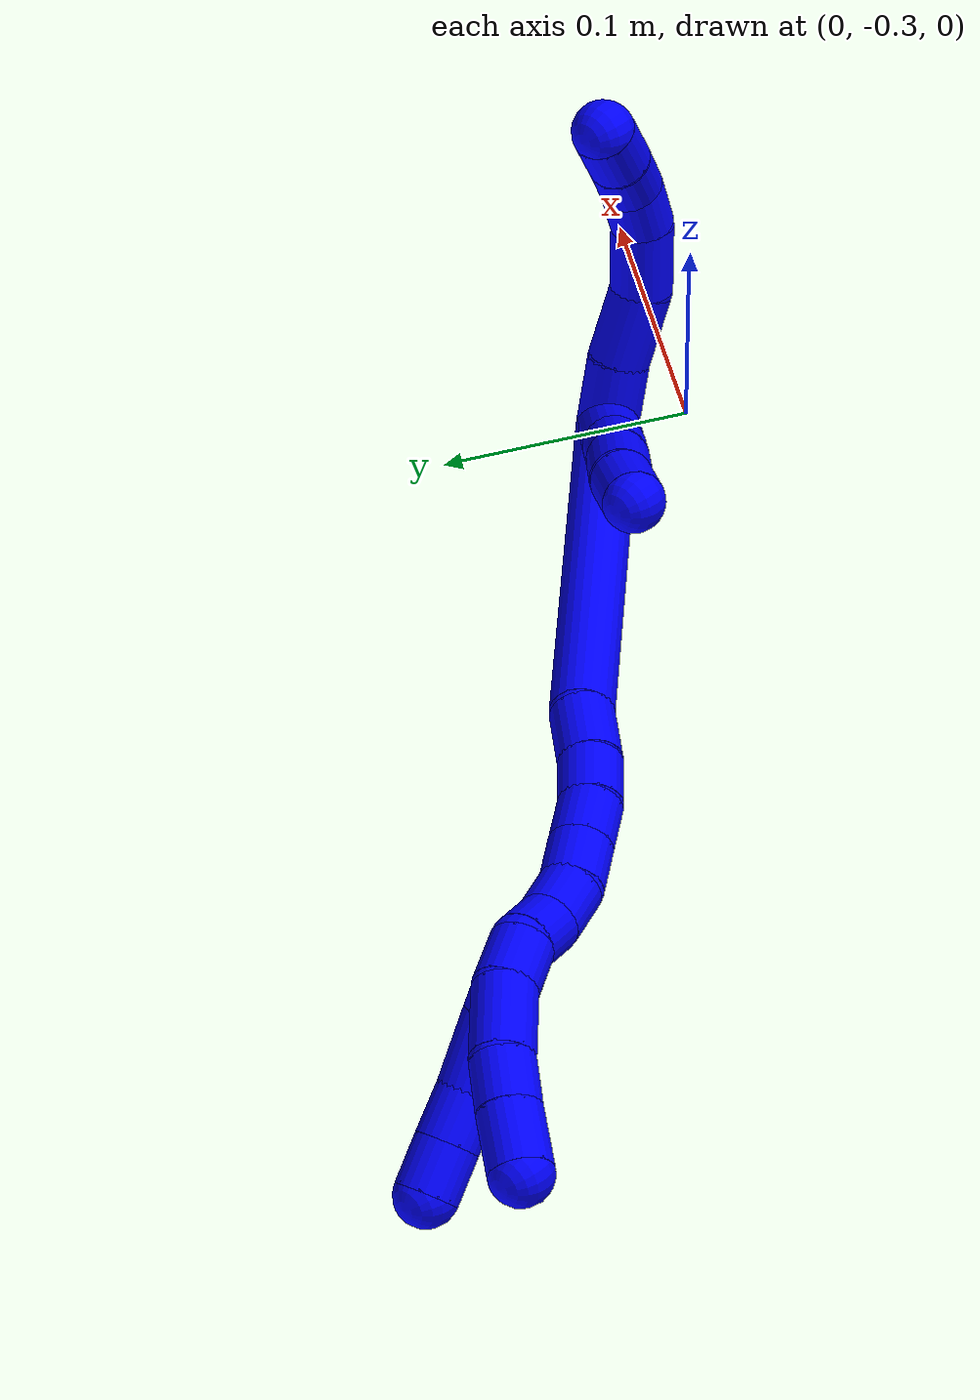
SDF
<sdf version="1.7">
 <world name="default">
  <model name="1">
   <static>0</static>
   <link name="1">
    <collision name="collision-cylinder-e_1_2_8">
     <pose>0.0136 2.9e-05 0.003592 -0.008194 1.31254 -0.006311</pose>
     <geometry><cylinder><radius>0.0125</radius><length>0.028134</length></cylinder></geometry>
     <surface>
      <friction><ode><mu>1.16</mu><mu2>1.16</mu2><slip1>0</slip1><slip2>0</slip2></ode></friction>
      <contact><ode><kp>1e+06</kp><kd>1</kd><max_vel>0</max_vel><min_depth>0.001</min_depth></ode></contact>
     </surface>
    </collision>
    <visual name="visual-cylinder-e_1_2_8">
     <pose>0.0136 2.9e-05 0.003592 -0.008194 1.31254 -0.006311</pose>
     <geometry><cylinder><radius>0.0125</radius><length>0.028134</length></cylinder></geometry>
     <material><ambient>0 0 1 1</ambient></material>
    </visual>
    <collision name="collision-cylinder-e_2_8_9">
     <pose>0.0419 0.001831 0.012054 -0.349066 1.2319 -0.248329</pose>
     <geometry><cylinder><radius>0.0125</radius><length>0.031171</length></cylinder></geometry>
     <surface>
      <friction><ode><mu>1.16</mu><mu2>1.16</mu2><slip1>0</slip1><slip2>0</slip2></ode></friction>
      <contact><ode><kp>1e+06</kp><kd>1</kd><max_vel>0</max_vel><min_depth>0.001</min_depth></ode></contact>
     </surface>
    </collision>
    <visual name="visual-cylinder-e_2_8_9">
     <pose>0.0419 0.001831 0.012054 -0.349066 1.2319 -0.248329</pose>
     <geometry><cylinder><radius>0.0125</radius><length>0.031171</length></cylinder></geometry>
     <material><ambient>0 0 1 1</ambient></material>
    </visual>
    <collision name="collision-cylinder-e_3_9_10">
     <pose>0.071014 0.003374 0.017667 0.298582 1.51684 0.283106</pose>
     <geometry><cylinder><radius>0.0125</radius><length>0.028873</length></cylinder></geometry>
     <surface>
      <friction><ode><mu>1.16</mu><mu2>1.16</mu2><slip1>0</slip1><slip2>0</slip2></ode></friction>
      <contact><ode><kp>1e+06</kp><kd>1</kd><max_vel>0</max_vel><min_depth>0.001</min_depth></ode></contact>
     </surface>
    </collision>
    <visual name="visual-cylinder-e_3_9_10">
     <pose>0.071014 0.003374 0.017667 0.298582 1.51684 0.283106</pose>
     <geometry><cylinder><radius>0.0125</radius><length>0.028873</length></cylinder></geometry>
     <material><ambient>0 0 1 1</ambient></material>
    </visual>
    <collision name="collision-cylinder-e_4_10_11">
     <pose>0.095243 0.002716 0.015578 2.99129 1.2867 2.94142</pose>
     <geometry><cylinder><radius>0.0125</radius><length>0.020446</length></cylinder></geometry>
     <surface>
      <friction><ode><mu>1.16</mu><mu2>1.16</mu2><slip1>0</slip1><slip2>0</slip2></ode></friction>
      <contact><ode><kp>1e+06</kp><kd>1</kd><max_vel>0</max_vel><min_depth>0.001</min_depth></ode></contact>
     </surface>
    </collision>
    <visual name="visual-cylinder-e_4_10_11">
     <pose>0.095243 0.002716 0.015578 2.99129 1.2867 2.94142</pose>
     <geometry><cylinder><radius>0.0125</radius><length>0.020446</length></cylinder></geometry>
     <material><ambient>0 0 1 1</ambient></material>
    </visual>
    <collision name="collision-cylinder-e_5_11_12">
     <pose>0.113639 0.003677 0.007627 -2.87633 1.01734 -2.67189</pose>
     <geometry><cylinder><radius>0.0125</radius><length>0.020178</length></cylinder></geometry>
     <surface>
      <friction><ode><mu>1.16</mu><mu2>1.16</mu2><slip1>0</slip1><slip2>0</slip2></ode></friction>
      <contact><ode><kp>1e+06</kp><kd>1</kd><max_vel>0</max_vel><min_depth>0.001</min_depth></ode></contact>
     </surface>
    </collision>
    <visual name="visual-cylinder-e_5_11_12">
     <pose>0.113639 0.003677 0.007627 -2.87633 1.01734 -2.67189</pose>
     <geometry><cylinder><radius>0.0125</radius><length>0.020178</length></cylinder></geometry>
     <material><ambient>0 0 1 1</ambient></material>
    </visual>
    <collision name="collision-cylinder-e_6_12_6">
     <pose>0.131389 0.005741 -0.002767 -3.01458 1.04501 -2.92164</pose>
     <geometry><cylinder><radius>0.0125</radius><length>0.021199</length></cylinder></geometry>
     <surface>
      <friction><ode><mu>1.16</mu><mu2>1.16</mu2><slip1>0</slip1><slip2>0</slip2></ode></friction>
      <contact><ode><kp>1e+06</kp><kd>1</kd><max_vel>0</max_vel><min_depth>0.001</min_depth></ode></contact>
     </surface>
    </collision>
    <visual name="visual-cylinder-e_6_12_6">
     <pose>0.131389 0.005741 -0.002767 -3.01458 1.04501 -2.92164</pose>
     <geometry><cylinder><radius>0.0125</radius><length>0.021199</length></cylinder></geometry>
     <material><ambient>0 0 1 1</ambient></material>
    </visual>
    <collision name="collision-cylinder-e_1_2_13">
     <pose>0.004699 0.010778 -0.010511 -2.34363 0.302546 -0.693898</pose>
     <geometry><cylinder><radius>0.0125</radius><length>0.031542</length></cylinder></geometry>
     <surface>
      <friction><ode><mu>1.16</mu><mu2>1.16</mu2><slip1>0</slip1><slip2>0</slip2></ode></friction>
      <contact><ode><kp>1e+06</kp><kd>1</kd><max_vel>0</max_vel><min_depth>0.001</min_depth></ode></contact>
     </surface>
    </collision>
    <visual name="visual-cylinder-e_1_2_13">
     <pose>0.004699 0.010778 -0.010511 -2.34363 0.302546 -0.693898</pose>
     <geometry><cylinder><radius>0.0125</radius><length>0.031542</length></cylinder></geometry>
     <material><ambient>0 0 1 1</ambient></material>
    </visual>
    <collision name="collision-cylinder-e_2_13_14">
     <pose>0.013182 0.028913 -0.028458 -2.36161 0.34708 -0.806254</pose>
     <geometry><cylinder><radius>0.0125</radius><length>0.022248</length></cylinder></geometry>
     <surface>
      <friction><ode><mu>1.16</mu><mu2>1.16</mu2><slip1>0</slip1><slip2>0</slip2></ode></friction>
      <contact><ode><kp>1e+06</kp><kd>1</kd><max_vel>0</max_vel><min_depth>0.001</min_depth></ode></contact>
     </surface>
    </collision>
    <visual name="visual-cylinder-e_2_13_14">
     <pose>0.013182 0.028913 -0.028458 -2.36161 0.34708 -0.806254</pose>
     <geometry><cylinder><radius>0.0125</radius><length>0.022248</length></cylinder></geometry>
     <material><ambient>0 0 1 1</ambient></material>
    </visual>
    <collision name="collision-cylinder-e_3_14_15">
     <pose>0.020264 0.044645 -0.044642 -2.37785 0.265874 -0.642891</pose>
     <geometry><cylinder><radius>0.0125</radius><length>0.025103</length></cylinder></geometry>
     <surface>
      <friction><ode><mu>1.16</mu><mu2>1.16</mu2><slip1>0</slip1><slip2>0</slip2></ode></friction>
      <contact><ode><kp>1e+06</kp><kd>1</kd><max_vel>0</max_vel><min_depth>0.001</min_depth></ode></contact>
     </surface>
    </collision>
    <visual name="visual-cylinder-e_3_14_15">
     <pose>0.020264 0.044645 -0.044642 -2.37785 0.265874 -0.642891</pose>
     <geometry><cylinder><radius>0.0125</radius><length>0.025103</length></cylinder></geometry>
     <material><ambient>0 0 1 1</ambient></material>
    </visual>
    <collision name="collision-cylinder-e_4_15_5">
     <pose>0.025198 0.061423 -0.059562 -2.20445 0.155678 -0.305778</pose>
     <geometry><cylinder><radius>0.0125</radius><length>0.021107</length></cylinder></geometry>
     <surface>
      <friction><ode><mu>1.16</mu><mu2>1.16</mu2><slip1>0</slip1><slip2>0</slip2></ode></friction>
      <contact><ode><kp>1e+06</kp><kd>1</kd><max_vel>0</max_vel><min_depth>0.001</min_depth></ode></contact>
     </surface>
    </collision>
    <visual name="visual-cylinder-e_4_15_5">
     <pose>0.025198 0.061423 -0.059562 -2.20445 0.155678 -0.305778</pose>
     <geometry><cylinder><radius>0.0125</radius><length>0.021107</length></cylinder></geometry>
     <material><ambient>0 0 1 1</ambient></material>
    </visual>
    <collision name="collision-cylinder-e_1_2_16">
     <pose>-0.008932 0.05243 -0.068711 -2.48979 -0.102979 0.302653</pose>
     <geometry><cylinder><radius>0.0125</radius><length>0.17378</length></cylinder></geometry>
     <surface>
      <friction><ode><mu>1.16</mu><mu2>1.16</mu2><slip1>0</slip1><slip2>0</slip2></ode></friction>
      <contact><ode><kp>1e+06</kp><kd>1</kd><max_vel>0</max_vel><min_depth>0.001</min_depth></ode></contact>
     </surface>
    </collision>
    <visual name="visual-cylinder-e_1_2_16">
     <pose>-0.008932 0.05243 -0.068711 -2.48979 -0.102979 0.302653</pose>
     <geometry><cylinder><radius>0.0125</radius><length>0.17378</length></cylinder></geometry>
     <material><ambient>0 0 1 1</ambient></material>
    </visual>
    <collision name="collision-cylinder-e_2_16_17">
     <pose>-0.020391 0.114026 -0.145684 -2.30443 -0.201961 0.447886</pose>
     <geometry><cylinder><radius>0.0125</radius><length>0.025194</length></cylinder></geometry>
     <surface>
      <friction><ode><mu>1.16</mu><mu2>1.16</mu2><slip1>0</slip1><slip2>0</slip2></ode></friction>
      <contact><ode><kp>1e+06</kp><kd>1</kd><max_vel>0</max_vel><min_depth>0.001</min_depth></ode></contact>
     </surface>
    </collision>
    <visual name="visual-cylinder-e_2_16_17">
     <pose>-0.020391 0.114026 -0.145684 -2.30443 -0.201961 0.447886</pose>
     <geometry><cylinder><radius>0.0125</radius><length>0.025194</length></cylinder></geometry>
     <material><ambient>0 0 1 1</ambient></material>
    </visual>
    <collision name="collision-cylinder-e_3_17_18">
     <pose>-0.025432 0.129792 -0.161617 -2.43104 -0.24356 0.63725</pose>
     <geometry><cylinder><radius>0.0125</radius><length>0.020854</length></cylinder></geometry>
     <surface>
      <friction><ode><mu>1.16</mu><mu2>1.16</mu2><slip1>0</slip1><slip2>0</slip2></ode></friction>
      <contact><ode><kp>1e+06</kp><kd>1</kd><max_vel>0</max_vel><min_depth>0.001</min_depth></ode></contact>
     </surface>
    </collision>
    <visual name="visual-cylinder-e_3_17_18">
     <pose>-0.025432 0.129792 -0.161617 -2.43104 -0.24356 0.63725</pose>
     <geometry><cylinder><radius>0.0125</radius><length>0.020854</length></cylinder></geometry>
     <material><ambient>0 0 1 1</ambient></material>
    </visual>
    <collision name="collision-cylinder-e_4_18_19">
     <pose>-0.030361 0.141238 -0.177713 -2.61974 -0.243447 0.859194</pose>
     <geometry><cylinder><radius>0.0125</radius><length>0.02003</length></cylinder></geometry>
     <surface>
      <friction><ode><mu>1.16</mu><mu2>1.16</mu2><slip1>0</slip1><slip2>0</slip2></ode></friction>
      <contact><ode><kp>1e+06</kp><kd>1</kd><max_vel>0</max_vel><min_depth>0.001</min_depth></ode></contact>
     </surface>
    </collision>
    <visual name="visual-cylinder-e_4_18_19">
     <pose>-0.030361 0.141238 -0.177713 -2.61974 -0.243447 0.859194</pose>
     <geometry><cylinder><radius>0.0125</radius><length>0.02003</length></cylinder></geometry>
     <material><ambient>0 0 1 1</ambient></material>
    </visual>
    <collision name="collision-cylinder-e_5_19_20">
     <pose>-0.035127 0.150985 -0.194588 -2.61583 -0.23629 0.830822</pose>
     <geometry><cylinder><radius>0.0125</radius><length>0.020094</length></cylinder></geometry>
     <surface>
      <friction><ode><mu>1.16</mu><mu2>1.16</mu2><slip1>0</slip1><slip2>0</slip2></ode></friction>
      <contact><ode><kp>1e+06</kp><kd>1</kd><max_vel>0</max_vel><min_depth>0.001</min_depth></ode></contact>
     </surface>
    </collision>
    <visual name="visual-cylinder-e_5_19_20">
     <pose>-0.035127 0.150985 -0.194588 -2.61583 -0.23629 0.830822</pose>
     <geometry><cylinder><radius>0.0125</radius><length>0.020094</length></cylinder></geometry>
     <material><ambient>0 0 1 1</ambient></material>
    </visual>
    <collision name="collision-cylinder-e_6_20_21">
     <pose>-0.038988 0.15844 -0.212591 -2.88045 -0.151464 1.04789</pose>
     <geometry><cylinder><radius>0.0125</radius><length>0.02001</length></cylinder></geometry>
     <surface>
      <friction><ode><mu>1.16</mu><mu2>1.16</mu2><slip1>0</slip1><slip2>0</slip2></ode></friction>
      <contact><ode><kp>1e+06</kp><kd>1</kd><max_vel>0</max_vel><min_depth>0.001</min_depth></ode></contact>
     </surface>
    </collision>
    <visual name="visual-cylinder-e_6_20_21">
     <pose>-0.038988 0.15844 -0.212591 -2.88045 -0.151464 1.04789</pose>
     <geometry><cylinder><radius>0.0125</radius><length>0.02001</length></cylinder></geometry>
     <material><ambient>0 0 1 1</ambient></material>
    </visual>
    <collision name="collision-cylinder-e_7_21_1">
     <pose>-0.03877 0.16325 -0.231755 -2.911 0.173359 -1.28745</pose>
     <geometry><cylinder><radius>0.0125</radius><length>0.02004</length></cylinder></geometry>
     <surface>
      <friction><ode><mu>1.16</mu><mu2>1.16</mu2><slip1>0</slip1><slip2>0</slip2></ode></friction>
      <contact><ode><kp>1e+06</kp><kd>1</kd><max_vel>0</max_vel><min_depth>0.001</min_depth></ode></contact>
     </surface>
    </collision>
    <visual name="visual-cylinder-e_7_21_1">
     <pose>-0.03877 0.16325 -0.231755 -2.911 0.173359 -1.28745</pose>
     <geometry><cylinder><radius>0.0125</radius><length>0.02004</length></cylinder></geometry>
     <material><ambient>0 0 1 1</ambient></material>
    </visual>
    <collision name="collision-cylinder-e_1_1_22">
     <pose>-0.050195 0.164443 -0.247762 2.97698 -1.11272 -2.87784</pose>
     <geometry><cylinder><radius>0.0125</radius><length>0.029332</length></cylinder></geometry>
     <surface>
      <friction><ode><mu>1.16</mu><mu2>1.16</mu2><slip1>0</slip1><slip2>0</slip2></ode></friction>
      <contact><ode><kp>1e+06</kp><kd>1</kd><max_vel>0</max_vel><min_depth>0.001</min_depth></ode></contact>
     </surface>
    </collision>
    <visual name="visual-cylinder-e_1_1_22">
     <pose>-0.050195 0.164443 -0.247762 2.97698 -1.11272 -2.87784</pose>
     <geometry><cylinder><radius>0.0125</radius><length>0.029332</length></cylinder></geometry>
     <material><ambient>0 0 1 1</ambient></material>
    </visual>
    <collision name="collision-cylinder-e_2_22_23">
     <pose>-0.075199 0.164472 -0.263243 -3.02198 -0.913352 2.89905</pose>
     <geometry><cylinder><radius>0.0125</radius><length>0.029941</length></cylinder></geometry>
     <surface>
      <friction><ode><mu>1.16</mu><mu2>1.16</mu2><slip1>0</slip1><slip2>0</slip2></ode></friction>
      <contact><ode><kp>1e+06</kp><kd>1</kd><max_vel>0</max_vel><min_depth>0.001</min_depth></ode></contact>
     </surface>
    </collision>
    <visual name="visual-cylinder-e_2_22_23">
     <pose>-0.075199 0.164472 -0.263243 -3.02198 -0.913352 2.89905</pose>
     <geometry><cylinder><radius>0.0125</radius><length>0.029941</length></cylinder></geometry>
     <material><ambient>0 0 1 1</ambient></material>
    </visual>
    <collision name="collision-cylinder-e_3_23_24">
     <pose>-0.094024 0.166611 -0.27972 -3.00084 -0.751278 2.78783</pose>
     <geometry><cylinder><radius>0.0125</radius><length>0.020438</length></cylinder></geometry>
     <surface>
      <friction><ode><mu>1.16</mu><mu2>1.16</mu2><slip1>0</slip1><slip2>0</slip2></ode></friction>
      <contact><ode><kp>1e+06</kp><kd>1</kd><max_vel>0</max_vel><min_depth>0.001</min_depth></ode></contact>
     </surface>
    </collision>
    <visual name="visual-cylinder-e_3_23_24">
     <pose>-0.094024 0.166611 -0.27972 -3.00084 -0.751278 2.78783</pose>
     <geometry><cylinder><radius>0.0125</radius><length>0.020438</length></cylinder></geometry>
     <material><ambient>0 0 1 1</ambient></material>
    </visual>
    <collision name="collision-cylinder-e_4_24_4">
     <pose>-0.107927 0.168829 -0.294433 -2.98298 -0.751656 2.74408</pose>
     <geometry><cylinder><radius>0.0125</radius><length>0.020289</length></cylinder></geometry>
     <surface>
      <friction><ode><mu>1.16</mu><mu2>1.16</mu2><slip1>0</slip1><slip2>0</slip2></ode></friction>
      <contact><ode><kp>1e+06</kp><kd>1</kd><max_vel>0</max_vel><min_depth>0.001</min_depth></ode></contact>
     </surface>
    </collision>
    <visual name="visual-cylinder-e_4_24_4">
     <pose>-0.107927 0.168829 -0.294433 -2.98298 -0.751656 2.74408</pose>
     <geometry><cylinder><radius>0.0125</radius><length>0.020289</length></cylinder></geometry>
     <material><ambient>0 0 1 1</ambient></material>
    </visual>
    <collision name="collision-cylinder-e_1_1_25">
     <pose>-0.039529 0.169625 -0.250946 -2.73555 -0.2341 1.03797</pose>
     <geometry><cylinder><radius>0.0125</radius><length>0.021446</length></cylinder></geometry>
     <surface>
      <friction><ode><mu>1.16</mu><mu2>1.16</mu2><slip1>0</slip1><slip2>0</slip2></ode></friction>
      <contact><ode><kp>1e+06</kp><kd>1</kd><max_vel>0</max_vel><min_depth>0.001</min_depth></ode></contact>
     </surface>
    </collision>
    <visual name="visual-cylinder-e_1_1_25">
     <pose>-0.039529 0.169625 -0.250946 -2.73555 -0.2341 1.03797</pose>
     <geometry><cylinder><radius>0.0125</radius><length>0.021446</length></cylinder></geometry>
     <material><ambient>0 0 1 1</ambient></material>
    </visual>
    <collision name="collision-cylinder-e_2_25_26">
     <pose>-0.046436 0.183374 -0.272322 -2.45691 -0.282535 0.759394</pose>
     <geometry><cylinder><radius>0.0125</radius><length>0.031706</length></cylinder></geometry>
     <surface>
      <friction><ode><mu>1.16</mu><mu2>1.16</mu2><slip1>0</slip1><slip2>0</slip2></ode></friction>
      <contact><ode><kp>1e+06</kp><kd>1</kd><max_vel>0</max_vel><min_depth>0.001</min_depth></ode></contact>
     </surface>
    </collision>
    <visual name="visual-cylinder-e_2_25_26">
     <pose>-0.046436 0.183374 -0.272322 -2.45691 -0.282535 0.759394</pose>
     <geometry><cylinder><radius>0.0125</radius><length>0.031706</length></cylinder></geometry>
     <material><ambient>0 0 1 1</ambient></material>
    </visual>
    <collision name="collision-cylinder-e_3_26_27">
     <pose>-0.054954 0.200287 -0.290595 -2.29775 -0.397963 0.844428</pose>
     <geometry><cylinder><radius>0.0125</radius><length>0.021152</length></cylinder></geometry>
     <surface>
      <friction><ode><mu>1.16</mu><mu2>1.16</mu2><slip1>0</slip1><slip2>0</slip2></ode></friction>
      <contact><ode><kp>1e+06</kp><kd>1</kd><max_vel>0</max_vel><min_depth>0.001</min_depth></ode></contact>
     </surface>
    </collision>
    <visual name="visual-cylinder-e_3_26_27">
     <pose>-0.054954 0.200287 -0.290595 -2.29775 -0.397963 0.844428</pose>
     <geometry><cylinder><radius>0.0125</radius><length>0.021152</length></cylinder></geometry>
     <material><ambient>0 0 1 1</ambient></material>
    </visual>
    <collision name="collision-cylinder-e_4_27_3">
     <pose>-0.064051 0.216798 -0.304488 -2.2477 -0.399616 0.799532</pose>
     <geometry><cylinder><radius>0.0125</radius><length>0.025695</length></cylinder></geometry>
     <surface>
      <friction><ode><mu>1.16</mu><mu2>1.16</mu2><slip1>0</slip1><slip2>0</slip2></ode></friction>
      <contact><ode><kp>1e+06</kp><kd>1</kd><max_vel>0</max_vel><min_depth>0.001</min_depth></ode></contact>
     </surface>
    </collision>
    <visual name="visual-cylinder-e_4_27_3">
     <pose>-0.064051 0.216798 -0.304488 -2.2477 -0.399616 0.799532</pose>
     <geometry><cylinder><radius>0.0125</radius><length>0.025695</length></cylinder></geometry>
     <material><ambient>0 0 1 1</ambient></material>
    </visual>
    <collision name="collision-sphere-3">
     <pose>-0.06905 0.226024 -0.311901 0 -0 0</pose>
     <geometry><sphere><radius>0.0125</radius></sphere></geometry>
     <surface>
      <friction><ode><mu>1.16</mu><mu2>1.16</mu2><slip1>0</slip1><slip2>0</slip2></ode></friction>
      <contact><ode><kp>1e+06</kp><kd>1</kd><max_vel>0</max_vel><min_depth>0.001</min_depth></ode></contact>
     </surface>
    </collision>
    <visual name="visual-sphere-3">
     <pose>-0.06905 0.226024 -0.311901 0 -0 0</pose>
     <geometry><sphere><radius>0.0125</radius></sphere></geometry>
     <material><ambient>0 0 1 1</ambient></material>
    </visual>
    <collision name="collision-sphere-27">
     <pose>-0.059053 0.207572 -0.297075 0 -0 0</pose>
     <geometry><sphere><radius>0.0125</radius></sphere></geometry>
     <surface>
      <friction><ode><mu>1.16</mu><mu2>1.16</mu2><slip1>0</slip1><slip2>0</slip2></ode></friction>
      <contact><ode><kp>1e+06</kp><kd>1</kd><max_vel>0</max_vel><min_depth>0.001</min_depth></ode></contact>
     </surface>
    </collision>
    <visual name="visual-sphere-27">
     <pose>-0.059053 0.207572 -0.297075 0 -0 0</pose>
     <geometry><sphere><radius>0.0125</radius></sphere></geometry>
     <material><ambient>0 0 1 1</ambient></material>
    </visual>
    <collision name="collision-sphere-26">
     <pose>-0.050855 0.193002 -0.284115 0 -0 0</pose>
     <geometry><sphere><radius>0.0125</radius></sphere></geometry>
     <surface>
      <friction><ode><mu>1.16</mu><mu2>1.16</mu2><slip1>0</slip1><slip2>0</slip2></ode></friction>
      <contact><ode><kp>1e+06</kp><kd>1</kd><max_vel>0</max_vel><min_depth>0.001</min_depth></ode></contact>
     </surface>
    </collision>
    <visual name="visual-sphere-26">
     <pose>-0.050855 0.193002 -0.284115 0 -0 0</pose>
     <geometry><sphere><radius>0.0125</radius></sphere></geometry>
     <material><ambient>0 0 1 1</ambient></material>
    </visual>
    <collision name="collision-sphere-25">
     <pose>-0.042016 0.173745 -0.260529 0 -0 0</pose>
     <geometry><sphere><radius>0.0125</radius></sphere></geometry>
     <surface>
      <friction><ode><mu>1.16</mu><mu2>1.16</mu2><slip1>0</slip1><slip2>0</slip2></ode></friction>
      <contact><ode><kp>1e+06</kp><kd>1</kd><max_vel>0</max_vel><min_depth>0.001</min_depth></ode></contact>
     </surface>
    </collision>
    <visual name="visual-sphere-25">
     <pose>-0.042016 0.173745 -0.260529 0 -0 0</pose>
     <geometry><sphere><radius>0.0125</radius></sphere></geometry>
     <material><ambient>0 0 1 1</ambient></material>
    </visual>
    <collision name="collision-sphere-4">
     <pose>-0.114854 0.17 -0.301751 0 -0 0</pose>
     <geometry><sphere><radius>0.0125</radius></sphere></geometry>
     <surface>
      <friction><ode><mu>1.16</mu><mu2>1.16</mu2><slip1>0</slip1><slip2>0</slip2></ode></friction>
      <contact><ode><kp>1e+06</kp><kd>1</kd><max_vel>0</max_vel><min_depth>0.001</min_depth></ode></contact>
     </surface>
    </collision>
    <visual name="visual-sphere-4">
     <pose>-0.114854 0.17 -0.301751 0 -0 0</pose>
     <geometry><sphere><radius>0.0125</radius></sphere></geometry>
     <material><ambient>0 0 1 1</ambient></material>
    </visual>
    <collision name="collision-sphere-24">
     <pose>-0.101 0.167659 -0.287115 0 -0 0</pose>
     <geometry><sphere><radius>0.0125</radius></sphere></geometry>
     <surface>
      <friction><ode><mu>1.16</mu><mu2>1.16</mu2><slip1>0</slip1><slip2>0</slip2></ode></friction>
      <contact><ode><kp>1e+06</kp><kd>1</kd><max_vel>0</max_vel><min_depth>0.001</min_depth></ode></contact>
     </surface>
    </collision>
    <visual name="visual-sphere-24">
     <pose>-0.101 0.167659 -0.287115 0 -0 0</pose>
     <geometry><sphere><radius>0.0125</radius></sphere></geometry>
     <material><ambient>0 0 1 1</ambient></material>
    </visual>
    <collision name="collision-sphere-23">
     <pose>-0.087049 0.165563 -0.272326 0 -0 0</pose>
     <geometry><sphere><radius>0.0125</radius></sphere></geometry>
     <surface>
      <friction><ode><mu>1.16</mu><mu2>1.16</mu2><slip1>0</slip1><slip2>0</slip2></ode></friction>
      <contact><ode><kp>1e+06</kp><kd>1</kd><max_vel>0</max_vel><min_depth>0.001</min_depth></ode></contact>
     </surface>
    </collision>
    <visual name="visual-sphere-23">
     <pose>-0.087049 0.165563 -0.272326 0 -0 0</pose>
     <geometry><sphere><radius>0.0125</radius></sphere></geometry>
     <material><ambient>0 0 1 1</ambient></material>
    </visual>
    <collision name="collision-sphere-22">
     <pose>-0.063349 0.16338 -0.25416 0 -0 0</pose>
     <geometry><sphere><radius>0.0125</radius></sphere></geometry>
     <surface>
      <friction><ode><mu>1.16</mu><mu2>1.16</mu2><slip1>0</slip1><slip2>0</slip2></ode></friction>
      <contact><ode><kp>1e+06</kp><kd>1</kd><max_vel>0</max_vel><min_depth>0.001</min_depth></ode></contact>
     </surface>
    </collision>
    <visual name="visual-sphere-22">
     <pose>-0.063349 0.16338 -0.25416 0 -0 0</pose>
     <geometry><sphere><radius>0.0125</radius></sphere></geometry>
     <material><ambient>0 0 1 1</ambient></material>
    </visual>
    <collision name="collision-sphere-1">
     <pose>-0.037041 0.165506 -0.241364 0 -0 0</pose>
     <geometry><sphere><radius>0.0125</radius></sphere></geometry>
     <surface>
      <friction><ode><mu>1.16</mu><mu2>1.16</mu2><slip1>0</slip1><slip2>0</slip2></ode></friction>
      <contact><ode><kp>1e+06</kp><kd>1</kd><max_vel>0</max_vel><min_depth>0.001</min_depth></ode></contact>
     </surface>
    </collision>
    <visual name="visual-sphere-1">
     <pose>-0.037041 0.165506 -0.241364 0 -0 0</pose>
     <geometry><sphere><radius>0.0125</radius></sphere></geometry>
     <material><ambient>0 0 1 1</ambient></material>
    </visual>
    <collision name="collision-sphere-21">
     <pose>-0.040498 0.160994 -0.222146 0 -0 0</pose>
     <geometry><sphere><radius>0.0125</radius></sphere></geometry>
     <surface>
      <friction><ode><mu>1.16</mu><mu2>1.16</mu2><slip1>0</slip1><slip2>0</slip2></ode></friction>
      <contact><ode><kp>1e+06</kp><kd>1</kd><max_vel>0</max_vel><min_depth>0.001</min_depth></ode></contact>
     </surface>
    </collision>
    <visual name="visual-sphere-21">
     <pose>-0.040498 0.160994 -0.222146 0 -0 0</pose>
     <geometry><sphere><radius>0.0125</radius></sphere></geometry>
     <material><ambient>0 0 1 1</ambient></material>
    </visual>
    <collision name="collision-sphere-12">
     <pose>0.122221 0.005068 0.00251 0 -0 0</pose>
     <geometry><sphere><radius>0.0125</radius></sphere></geometry>
     <surface>
      <friction><ode><mu>1.16</mu><mu2>1.16</mu2><slip1>0</slip1><slip2>0</slip2></ode></friction>
      <contact><ode><kp>1e+06</kp><kd>1</kd><max_vel>0</max_vel><min_depth>0.001</min_depth></ode></contact>
     </surface>
    </collision>
    <visual name="visual-sphere-12">
     <pose>0.122221 0.005068 0.00251 0 -0 0</pose>
     <geometry><sphere><radius>0.0125</radius></sphere></geometry>
     <material><ambient>0 0 1 1</ambient></material>
    </visual>
    <collision name="collision-sphere-11">
     <pose>0.105056 0.002287 0.012745 0 -0 0</pose>
     <geometry><sphere><radius>0.0125</radius></sphere></geometry>
     <surface>
      <friction><ode><mu>1.16</mu><mu2>1.16</mu2><slip1>0</slip1><slip2>0</slip2></ode></friction>
      <contact><ode><kp>1e+06</kp><kd>1</kd><max_vel>0</max_vel><min_depth>0.001</min_depth></ode></contact>
     </surface>
    </collision>
    <visual name="visual-sphere-11">
     <pose>0.105056 0.002287 0.012745 0 -0 0</pose>
     <geometry><sphere><radius>0.0125</radius></sphere></geometry>
     <material><ambient>0 0 1 1</ambient></material>
    </visual>
    <collision name="collision-sphere-10">
     <pose>0.08543 0.003145 0.018411 0 -0 0</pose>
     <geometry><sphere><radius>0.0125</radius></sphere></geometry>
     <surface>
      <friction><ode><mu>1.16</mu><mu2>1.16</mu2><slip1>0</slip1><slip2>0</slip2></ode></friction>
      <contact><ode><kp>1e+06</kp><kd>1</kd><max_vel>0</max_vel><min_depth>0.001</min_depth></ode></contact>
     </surface>
    </collision>
    <visual name="visual-sphere-10">
     <pose>0.08543 0.003145 0.018411 0 -0 0</pose>
     <geometry><sphere><radius>0.0125</radius></sphere></geometry>
     <material><ambient>0 0 1 1</ambient></material>
    </visual>
    <collision name="collision-sphere-9">
     <pose>0.056599 0.003603 0.016923 0 -0 0</pose>
     <geometry><sphere><radius>0.0125</radius></sphere></geometry>
     <surface>
      <friction><ode><mu>1.16</mu><mu2>1.16</mu2><slip1>0</slip1><slip2>0</slip2></ode></friction>
      <contact><ode><kp>1e+06</kp><kd>1</kd><max_vel>0</max_vel><min_depth>0.001</min_depth></ode></contact>
     </surface>
    </collision>
    <visual name="visual-sphere-9">
     <pose>0.056599 0.003603 0.016923 0 -0 0</pose>
     <geometry><sphere><radius>0.0125</radius></sphere></geometry>
     <material><ambient>0 0 1 1</ambient></material>
    </visual>
    <collision name="collision-sphere-2">
     <geometry><sphere><radius>0.0125</radius></sphere></geometry>
     <surface>
      <friction><ode><mu>1.16</mu><mu2>1.16</mu2><slip1>0</slip1><slip2>0</slip2></ode></friction>
      <contact><ode><kp>1e+06</kp><kd>1</kd><max_vel>0</max_vel><min_depth>0.001</min_depth></ode></contact>
     </surface>
    </collision>
    <visual name="visual-sphere-2">
     <geometry><sphere><radius>0.0125</radius></sphere></geometry>
     <material><ambient>0 0 1 1</ambient></material>
    </visual>
    <collision name="collision-sphere-19">
     <pose>-0.032775 0.146083 -0.186139 0 -0 0</pose>
     <geometry><sphere><radius>0.0125</radius></sphere></geometry>
     <surface>
      <friction><ode><mu>1.16</mu><mu2>1.16</mu2><slip1>0</slip1><slip2>0</slip2></ode></friction>
      <contact><ode><kp>1e+06</kp><kd>1</kd><max_vel>0</max_vel><min_depth>0.001</min_depth></ode></contact>
     </surface>
    </collision>
    <visual name="visual-sphere-19">
     <pose>-0.032775 0.146083 -0.186139 0 -0 0</pose>
     <geometry><sphere><radius>0.0125</radius></sphere></geometry>
     <material><ambient>0 0 1 1</ambient></material>
    </visual>
    <collision name="collision-sphere-8">
     <pose>0.027201 5.9e-05 0.007185 0 -0 0</pose>
     <geometry><sphere><radius>0.0125</radius></sphere></geometry>
     <surface>
      <friction><ode><mu>1.16</mu><mu2>1.16</mu2><slip1>0</slip1><slip2>0</slip2></ode></friction>
      <contact><ode><kp>1e+06</kp><kd>1</kd><max_vel>0</max_vel><min_depth>0.001</min_depth></ode></contact>
     </surface>
    </collision>
    <visual name="visual-sphere-8">
     <pose>0.027201 5.9e-05 0.007185 0 -0 0</pose>
     <geometry><sphere><radius>0.0125</radius></sphere></geometry>
     <material><ambient>0 0 1 1</ambient></material>
    </visual>
    <collision name="collision-sphere-6">
     <pose>0.140557 0.006415 -0.008044 0 -0 0</pose>
     <geometry><sphere><radius>0.0125</radius></sphere></geometry>
     <surface>
      <friction><ode><mu>1.16</mu><mu2>1.16</mu2><slip1>0</slip1><slip2>0</slip2></ode></friction>
      <contact><ode><kp>1e+06</kp><kd>1</kd><max_vel>0</max_vel><min_depth>0.001</min_depth></ode></contact>
     </surface>
    </collision>
    <visual name="visual-sphere-6">
     <pose>0.140557 0.006415 -0.008044 0 -0 0</pose>
     <geometry><sphere><radius>0.0125</radius></sphere></geometry>
     <material><ambient>0 0 1 1</ambient></material>
    </visual>
    <collision name="collision-sphere-13">
     <pose>0.009398 0.021556 -0.021021 0 -0 0</pose>
     <geometry><sphere><radius>0.0125</radius></sphere></geometry>
     <surface>
      <friction><ode><mu>1.16</mu><mu2>1.16</mu2><slip1>0</slip1><slip2>0</slip2></ode></friction>
      <contact><ode><kp>1e+06</kp><kd>1</kd><max_vel>0</max_vel><min_depth>0.001</min_depth></ode></contact>
     </surface>
    </collision>
    <visual name="visual-sphere-13">
     <pose>0.009398 0.021556 -0.021021 0 -0 0</pose>
     <geometry><sphere><radius>0.0125</radius></sphere></geometry>
     <material><ambient>0 0 1 1</ambient></material>
    </visual>
    <collision name="collision-sphere-14">
     <pose>0.016966 0.036269 -0.035895 0 -0 0</pose>
     <geometry><sphere><radius>0.0125</radius></sphere></geometry>
     <surface>
      <friction><ode><mu>1.16</mu><mu2>1.16</mu2><slip1>0</slip1><slip2>0</slip2></ode></friction>
      <contact><ode><kp>1e+06</kp><kd>1</kd><max_vel>0</max_vel><min_depth>0.001</min_depth></ode></contact>
     </surface>
    </collision>
    <visual name="visual-sphere-14">
     <pose>0.016966 0.036269 -0.035895 0 -0 0</pose>
     <geometry><sphere><radius>0.0125</radius></sphere></geometry>
     <material><ambient>0 0 1 1</ambient></material>
    </visual>
    <collision name="collision-sphere-15">
     <pose>0.023562 0.053021 -0.053388 0 -0 0</pose>
     <geometry><sphere><radius>0.0125</radius></sphere></geometry>
     <surface>
      <friction><ode><mu>1.16</mu><mu2>1.16</mu2><slip1>0</slip1><slip2>0</slip2></ode></friction>
      <contact><ode><kp>1e+06</kp><kd>1</kd><max_vel>0</max_vel><min_depth>0.001</min_depth></ode></contact>
     </surface>
    </collision>
    <visual name="visual-sphere-15">
     <pose>0.023562 0.053021 -0.053388 0 -0 0</pose>
     <geometry><sphere><radius>0.0125</radius></sphere></geometry>
     <material><ambient>0 0 1 1</ambient></material>
    </visual>
    <collision name="collision-sphere-5">
     <pose>0.026834 0.069825 -0.065735 0 -0 0</pose>
     <geometry><sphere><radius>0.0125</radius></sphere></geometry>
     <surface>
      <friction><ode><mu>1.16</mu><mu2>1.16</mu2><slip1>0</slip1><slip2>0</slip2></ode></friction>
      <contact><ode><kp>1e+06</kp><kd>1</kd><max_vel>0</max_vel><min_depth>0.001</min_depth></ode></contact>
     </surface>
    </collision>
    <visual name="visual-sphere-5">
     <pose>0.026834 0.069825 -0.065735 0 -0 0</pose>
     <geometry><sphere><radius>0.0125</radius></sphere></geometry>
     <material><ambient>0 0 1 1</ambient></material>
    </visual>
    <collision name="collision-sphere-16">
     <pose>-0.017864 0.10486 -0.137421 0 -0 0</pose>
     <geometry><sphere><radius>0.0125</radius></sphere></geometry>
     <surface>
      <friction><ode><mu>1.16</mu><mu2>1.16</mu2><slip1>0</slip1><slip2>0</slip2></ode></friction>
      <contact><ode><kp>1e+06</kp><kd>1</kd><max_vel>0</max_vel><min_depth>0.001</min_depth></ode></contact>
     </surface>
    </collision>
    <visual name="visual-sphere-16">
     <pose>-0.017864 0.10486 -0.137421 0 -0 0</pose>
     <geometry><sphere><radius>0.0125</radius></sphere></geometry>
     <material><ambient>0 0 1 1</ambient></material>
    </visual>
    <collision name="collision-sphere-17">
     <pose>-0.022918 0.123192 -0.153947 0 -0 0</pose>
     <geometry><sphere><radius>0.0125</radius></sphere></geometry>
     <surface>
      <friction><ode><mu>1.16</mu><mu2>1.16</mu2><slip1>0</slip1><slip2>0</slip2></ode></friction>
      <contact><ode><kp>1e+06</kp><kd>1</kd><max_vel>0</max_vel><min_depth>0.001</min_depth></ode></contact>
     </surface>
    </collision>
    <visual name="visual-sphere-17">
     <pose>-0.022918 0.123192 -0.153947 0 -0 0</pose>
     <geometry><sphere><radius>0.0125</radius></sphere></geometry>
     <material><ambient>0 0 1 1</ambient></material>
    </visual>
    <collision name="collision-sphere-18">
     <pose>-0.027947 0.136393 -0.169288 0 -0 0</pose>
     <geometry><sphere><radius>0.0125</radius></sphere></geometry>
     <surface>
      <friction><ode><mu>1.16</mu><mu2>1.16</mu2><slip1>0</slip1><slip2>0</slip2></ode></friction>
      <contact><ode><kp>1e+06</kp><kd>1</kd><max_vel>0</max_vel><min_depth>0.001</min_depth></ode></contact>
     </surface>
    </collision>
    <visual name="visual-sphere-18">
     <pose>-0.027947 0.136393 -0.169288 0 -0 0</pose>
     <geometry><sphere><radius>0.0125</radius></sphere></geometry>
     <material><ambient>0 0 1 1</ambient></material>
    </visual>
    <collision name="collision-sphere-20">
     <pose>-0.037479 0.155887 -0.203037 0 -0 0</pose>
     <geometry><sphere><radius>0.0125</radius></sphere></geometry>
     <surface>
      <friction><ode><mu>1.16</mu><mu2>1.16</mu2><slip1>0</slip1><slip2>0</slip2></ode></friction>
      <contact><ode><kp>1e+06</kp><kd>1</kd><max_vel>0</max_vel><min_depth>0.001</min_depth></ode></contact>
     </surface>
    </collision>
    <visual name="visual-sphere-20">
     <pose>-0.037479 0.155887 -0.203037 0 -0 0</pose>
     <geometry><sphere><radius>0.0125</radius></sphere></geometry>
     <material><ambient>0 0 1 1</ambient></material>
    </visual>
    <inertial>
     <pose>-0.008246 0.088853 -0.122823 0 -0 0</pose>
     <mass>0.75</mass>
     <inertia>
      <ixx>0.000575</ixx>
      <ixy>0</ixy>
      <ixz>0</ixz>
      <iyy>-0.000156</iyy>
      <iyz>0</iyz>
      <izz>-0.000279</izz>
     </inertia>
    </inertial>
   </link>
   <pose>-0.008862 -0.264638 0.015413 2.39477 -1.24368 -0.229695</pose>
  </model>
 </world>
</sdf>
